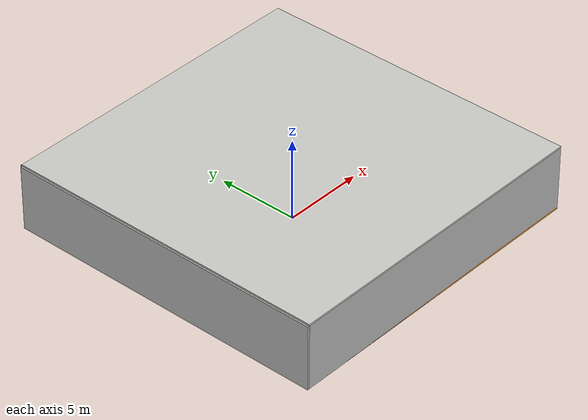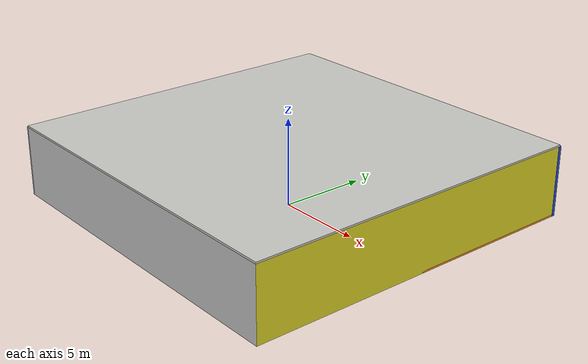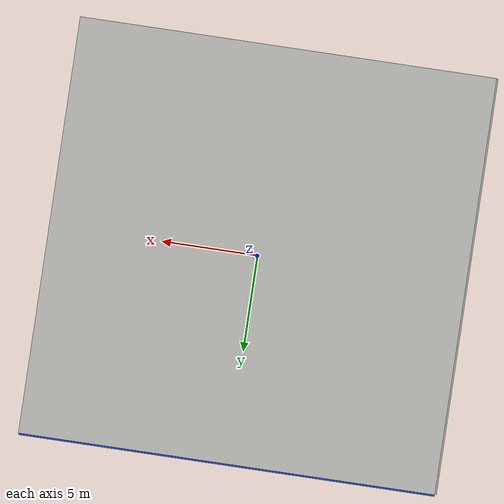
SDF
<sdf version="1.4">
 <world name="default">
  <physics type="ode">
   <max_step_size>0.001</max_step_size>
   <real_time_factor>1</real_time_factor>
   <real_time_update_rate>1000</real_time_update_rate>
   <gravity>0 0 -9.8</gravity>
  </physics>
  <scene><ambient>0.4 0.4 0.4 1</ambient><background>0.7 0.7 0.7 1</background><shadows>1</shadows></scene>
  <model name="Surrounding">
   <static>1</static>
   <link name="Ceiling">
    <collision name="Ceiling_Collision"><geometry><box><size>20 20 0.1</size></box></geometry></collision>
    <visual name="Ceiling_Visual">
     <geometry><box><size>20 20 0.1</size></box></geometry>
     <material>
      <script><uri>file://media/materials/scripts/gazebo.material</uri><name>Gazebo/CeilingTiled</name></script>
     </material>
    </visual>
    <pose>0 0 4.05 0 0 0</pose>
   </link>
   <link name="Wall_South">
    <collision name="Wall_South_Collision">
     <geometry><box><size>20 0 4</size></box></geometry>
     <pose>0 0 2 0 -0 0</pose>
    </collision>
    <visual name="Wall_South_Visual">
     <pose>0 0 2 0 -0 0</pose>
     <geometry><box><size>20 0 4</size></box></geometry>
     <material>
      <script><uri>file://media/materials/scripts/gazebo.material</uri><name>Gazebo/Pioneer2Body</name></script>
     </material>
    </visual>
    <velocity_decay><linear>0</linear><angular>0</angular></velocity_decay>
    <pose>0 -10 0 0 -0 0</pose>
   </link>
   <link name="Wall_East">
    <collision name="Wall_21_Collision">
     <geometry><box><size>20 0 4</size></box></geometry>
     <pose>0 0 2 0 -0 0</pose>
    </collision>
    <visual name="Wall_21_Visual">
     <pose>0 0 2 0 -0 0</pose>
     <geometry><box><size>20 0 4</size></box></geometry>
     <material>
      <script><uri>file://media/materials/scripts/gazebo.material</uri><name>Gazebo/YellowGlow</name></script>
     </material>
    </visual>
    <velocity_decay><linear>0</linear><angular>0</angular></velocity_decay>
    <pose>10 0 0 0 -0 1.5708</pose>
   </link>
   <link name="Wall_North">
    <collision name="Wall_22_Collision">
     <geometry><box><size>20 0.2 4</size></box></geometry>
     <pose>0 0 2 0 -0 0</pose>
    </collision>
    <visual name="Wall_22_Visual">
     <pose>0 0 2 0 -0 0</pose>
     <geometry><box><size>20 0.2 4</size></box></geometry>
     <material>
      <script><uri>file://media/materials/scripts/gazebo.material</uri><name>Gazebo/BlueGlow</name></script>
     </material>
    </visual>
    <velocity_decay><linear>0</linear><angular>0</angular></velocity_decay>
    <pose>0 10 0 0 -0 0</pose>
   </link>
   <link name="Wall_West">
    <collision name="Wall_23_Collision">
     <geometry><box><size>20 0.2 4</size></box></geometry>
     <pose>0 0 2 0 -0 0</pose>
    </collision>
    <visual name="Wall_23_Visual">
     <pose>0 0 2 0 -0 0</pose>
     <geometry><box><size>20 0.2 4</size></box></geometry>
     <material>
      <script><uri>file://media/materials/scripts/gazebo.material</uri><name>Gazebo/Pioneer2Body</name></script>
     </material>
    </visual>
    <velocity_decay><linear>0</linear><angular>0</angular></velocity_decay>
    <pose>-10 0 0 0 0 -1.5708</pose>
   </link>
   <link name="Ground_link">
    <collision name="collision">
     <pose>0 0 .05 0 -0 0</pose>
     <geometry><box><size>20 20 0.1</size></box></geometry>
    </collision>
    <visual name="visual">
     <pose>0 0 .05 0 -0 0</pose>
     <geometry><box><size>20 20 0.1</size></box></geometry>
     <material>
      <script><uri>file://media/materials/scripts/gazebo.material</uri><name>Gazebo/Orange</name></script>
     </material>
    </visual>
   </link>
   <static>1</static>
  </model>
  <spherical_coordinates>
   <surface_model>EARTH_WGS84</surface_model>
   <latitude_deg>0</latitude_deg>
   <longitude_deg>0</longitude_deg>
   <elevation>0</elevation>
   <heading_deg>0</heading_deg>
  </spherical_coordinates>
  <light name="lightball_0" type="diffuse">
   <diffuse>0.8 0.8 0.8 1</diffuse>
   <specular>0.2 0.2 0.2 1</specular>
   <attenuation>
    <range>100</range>
    <constant>0.7</constant>
    <linear>0.01</linear>
    <quadratic>0.001</quadratic>
   </attenuation>
   <direction>-0.5 0.1 -0.9</direction>
   <pose>-9.73198940264 8.53994545004 3.51865894271 0 0 0</pose>
  </light>
  <light name="lightball_1" type="diffuse">
   <diffuse>0.8 0.8 0.8 1</diffuse>
   <specular>0.2 0.2 0.2 1</specular>
   <attenuation>
    <range>100</range>
    <constant>0.7</constant>
    <linear>0.01</linear>
    <quadratic>0.001</quadratic>
   </attenuation>
   <direction>-0.5 0.1 -0.9</direction>
   <pose>4.50360597711 -1.38425982976 2.4977381289 0 0 0</pose>
  </light>
  <light name="lightball_2" type="diffuse">
   <diffuse>0.8 0.8 0.8 1</diffuse>
   <specular>0.2 0.2 0.2 1</specular>
   <attenuation>
    <range>100</range>
    <constant>0.7</constant>
    <linear>0.01</linear>
    <quadratic>0.001</quadratic>
   </attenuation>
   <direction>-0.5 0.1 -0.9</direction>
   <pose>3.1499814534 8.6588543787 2.6058148559 0 0 0</pose>
  </light>
  <light name="lightball_3" type="diffuse">
   <diffuse>0.8 0.8 0.8 1</diffuse>
   <specular>0.2 0.2 0.2 1</specular>
   <attenuation>
    <range>100</range>
    <constant>0.7</constant>
    <linear>0.01</linear>
    <quadratic>0.001</quadratic>
   </attenuation>
   <direction>-0.5 0.1 -0.9</direction>
   <pose>6.77433203652 5.68986314634 3.42948340405 0 0 0</pose>
  </light>
  <light name="lightball_4" type="diffuse">
   <diffuse>0.8 0.8 0.8 1</diffuse>
   <specular>0.2 0.2 0.2 1</specular>
   <attenuation>
    <range>100</range>
    <constant>0.7</constant>
    <linear>0.01</linear>
    <quadratic>0.001</quadratic>
   </attenuation>
   <direction>-0.5 0.1 -0.9</direction>
   <pose>-0.0697470863223 3.65811125307 2.89238207782 0 0 0</pose>
  </light>
  <light name="lightball_5" type="diffuse">
   <diffuse>0.8 0.8 0.8 1</diffuse>
   <specular>0.2 0.2 0.2 1</specular>
   <attenuation>
    <range>100</range>
    <constant>0.7</constant>
    <linear>0.01</linear>
    <quadratic>0.001</quadratic>
   </attenuation>
   <direction>-0.5 0.1 -0.9</direction>
   <pose>-3.55360005258 0.974479686053 2.71249905536 0 0 0</pose>
  </light>
  <include><uri>model://cabinet</uri><pose>-7.92215961397 -1.21962400795 0 0 0 2.39482741334</pose></include>
  <include><uri>model://cabinet</uri><pose>-4.84968272482 4.22954188091 0 0 0 0.906592456992</pose></include>
 </world>
</sdf>

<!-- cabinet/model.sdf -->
<sdf version="1.5">
  <model name="cabinet">
    <static>true</static>
    <link name="cabinet_bottom_plate">
      <inertial>
        <pose>0 0 -1 0 0 0</pose>
        <inertia>
          <ixx>2.050000</ixx>
          <ixy>0</ixy>
          <ixz>0</ixz>
          <iyy>2.050000</iyy>
          <iyz>0</iyz>
          <izz>2.050000</izz>
        </inertia>
        <mass>25.000000</mass>
      </inertial>
      <collision name="cabinet_bottom_plate_geom">
        <pose>0 0 0.010000 0 0 0</pose>
        <geometry>
          <box>
            <size>0.450000 0.450000 0.020000</size>
          </box>
        </geometry>
      </collision>
      <visual name="cabinet_bottom_plate_geom_visual">
        <pose>0 0 0.010000 0 0 0</pose>
        <geometry>
          <box>
            <size>0.450000 0.450000 0.020000</size>
          </box>
        </geometry>
        <material>
          <script>
            <uri>model://media/materials/scripts/gazebo.material</uri>
            <name>Gazebo/Wood</name>
          </script>
        </material>
      </visual>
      <collision name="cabinet_bottom_plate_geom_cabinet_back_plate">
        <pose>0.235000 0 0.510000 0 0 0</pose>
        <geometry>
          <box>
            <size>0.020000 0.450000 1.020000</size>
          </box>
        </geometry>
      </collision>
      <visual name="cabinet_bottom_plate_geom_cabinet_back_plate_visual">
        <pose>0.235000 0 0.510000 0 0 0</pose>
        <geometry>
          <box>
            <size>0.020000 0.450000 1.020000</size>
          </box>
        </geometry>
        <material>
          <script>
            <uri>model://media/materials/scripts/gazebo.material</uri>
            <name>Gazebo/Wood</name>
          </script>
        </material>
      </visual>
      <collision name="cabinet_bottom_plate_geom_cabinet_left_plate">
        <pose>0 0.235000 0.510000 0 0 0</pose>
        <geometry>
          <box>
            <size>0.450000 0.020000 1.020000</size>
          </box>
        </geometry>
      </collision>
      <visual name="cabinet_bottom_plate_geom_cabinet_left_plate_visual">
        <pose>0 0.235000 0.510000 0 0 0</pose>
        <geometry>
          <box>
            <size>0.450000 0.020000 1.020000</size>
          </box>
        </geometry>
        <material>
          <script>
            <uri>model://media/materials/scripts/gazebo.material</uri>
            <name>Gazebo/Wood</name>
          </script>
        </material>
      </visual>
      <collision name="cabinet_bottom_plate_geom_cabinet_middle_plate">
        <pose>0 0 0.510000 0 0 0</pose>
        <geometry>
          <box>
            <size>0.450000 0.450000 0.020000</size>
          </box>
        </geometry>
      </collision>
      <visual name="cabinet_bottom_plate_geom_cabinet_middle_plate_visual">
        <pose>0 0 0.510000 0 0 0</pose>
        <geometry>
          <box>
            <size>0.450000 0.450000 0.020000</size>
          </box>
        </geometry>
        <material>
          <script>
            <uri>model://media/materials/scripts/gazebo.material</uri>
            <name>Gazebo/Wood</name>
          </script>
        </material>
      </visual>
      <collision name="cabinet_bottom_plate_geom_cabinet_right_plate">
        <pose>0 -0.235000 0.510000 0 0 0</pose>
        <geometry>
          <box>
            <size>0.450000 0.020000 1.020000</size>
          </box>
        </geometry>
      </collision>
      <visual name="cabinet_bottom_plate_geom_cabinet_right_plate_visual">
        <pose>0 -0.235000 0.510000 0 0 0</pose>
        <geometry>
          <box>
            <size>0.450000 0.020000 1.020000</size>
          </box>
        </geometry>
        <material>
          <script>
            <uri>model://media/materials/scripts/gazebo.material</uri>
            <name>Gazebo/Wood</name>
          </script>
        </material>
      </visual>
      <collision name="cabinet_bottom_plate_geom_cabinet_top_plate">
        <pose>0 0 1.010000 0 0 0</pose>
        <geometry>
          <box>
            <size>0.450000 0.450000 0.020000</size>
          </box>
        </geometry>
      </collision>
      <visual name="cabinet_bottom_plate_geom_cabinet_top_plate_visual">
        <pose>0 0 1.010000 0 0 0</pose>
        <geometry>
          <box>
            <size>0.450000 0.450000 0.020000</size>
          </box>
        </geometry>
        <material>
          <script>
            <uri>model://media/materials/scripts/gazebo.material</uri>
            <name>Gazebo/Wood</name>
          </script>
        </material>
      </visual>
    </link>
  </model>
</sdf>
